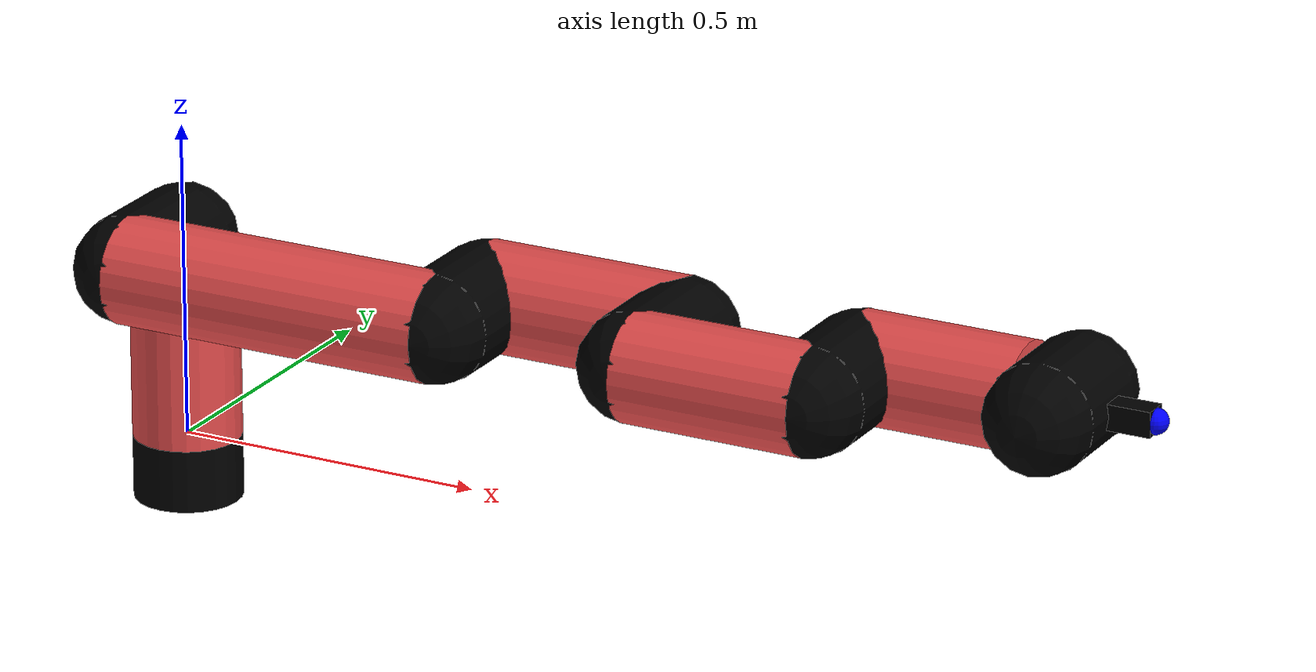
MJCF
<mujoco model="manipulator">
		<compiler angle="degree" coordinate="local" inertiafromgeom="auto" meshdir="meshes/"/>
		<option gravity="0 0 0" integrator="RK4" iterations="30" timestep="0.01"/>

		<default>
		<joint armature="1" limited="true" stiffness="10" damping="15" frictionloss="5.0"/>
		<geom conaffinity="1" condim="3" contype="1" friction=".5 .1 .1" margin="0.002"/>
		<motor ctrllimited="true"/>
		<position ctrllimited="true"/>
		</default>

		<asset>
		<texture builtin="gradient" height="100" rgb1="1.0 1.0 1.0" rgb2="1.0 1.0 1.0" type="skybox" width="100"/>
		<texture builtin="flat" height="32" name="arm_tex" rgb1="0.9 0.3 0.3" type="2d" width="32"/>
		<texture builtin="flat" height="32" name="gripper_tex" rgb1="0.0 0.0 0.0" type="cube" width="32"/>

		<material name="arm_mat" shininess="0.1" specular="0.1" texture="arm_tex"/>
		<material name="gripper_mat" shininess="1" specular="1" texture="gripper_tex"/>
		</asset>

		<worldbody>
		<light cutoff="45" diffuse=".8 .8 .8" dir="0 0.16 -1" directional="false" name="light" pos="0 -2.0 8.0" specular="0.3 0.3 0.3"/>

		<body name="base_link" pos="0 0 -0.1">
		<geom fromto="0 0 0 0 0 0.1" material="arm_mat" name="base_link" rgba="0.0 0.0 0.0 1" size="0.085" type="cylinder"/>
		</body>

		<body name="l1" pos="0 0 0">
<geom fromto="0 0 0 0 0 0.32" material="arm_mat" name="l1" rgba="0.9 0.3 0.3 1" size="0.085" type="cylinder"/>
<geom fromto="0 0 0.32 0 -0.16 0.32" material="arm_mat" name="l1_ex" rgba="0.0 0.0 0.0 1" size="0.085" type="capsule"/>
<joint axis="0 0 1" name="j1" pos="0 0 0" range="-90 90" damping="31.63" frictionloss="9.44"/>

<body name="l2" pos="0 -0.16 0.32">
<geom fromto="0 0 0 0.53 0 0" material="arm_mat" name="l2" rgba="0.9 0.3 0.3 1" size="0.085" type="cylinder"/>
<geom fromto="0.53 0 0 0.53 0.16 0" material="arm_mat" name="l2_ex" rgba="0.0 0.0 0.0 1" size="0.085" type="capsule"/>
<joint axis="0.0 1.0 0.0" name="j2" pos="0 0 0" range="-90 60" damping="28.13" frictionloss="11.34"/>

<body name="l3" pos="0.53 0.16 0">
<geom fromto="0 0 0 0.33 0 0" material="arm_mat" name="l3" rgba="0.9 0.3 0.3 1" size="0.085" type="cylinder"/>
<geom fromto="0.33 0 0 0.33 -0.16 0" material="arm_mat" name="l3_ex" rgba="0.0 0.0 0.0 1" size="0.085" type="capsule"/>
<joint axis="0.0 1.0 0.0" name="j3" pos="0 0 0" range="-30 60" damping="36.59" frictionloss="9.01"/>

<body name="l4" pos="0.33 -0.16 0">
<geom fromto="0 0 0 0.29 0 0" material="arm_mat" name="l4" rgba="0.9 0.3 0.3 1" size="0.085" type="cylinder"/>
<geom fromto="0.29 0 0 0.29 0.16 0" material="arm_mat" name="l4_ex" rgba="0.0 0.0 0.0 1" size="0.085" type="capsule"/>
<joint axis="0.0 1.0 0.0" name="j4" pos="0 0 0" range="-30 60" damping="35.37" frictionloss="10.59"/>

<body name="l5" pos="0.29 0.16 0">
<geom fromto="0 0 0 0.27 0 0" material="arm_mat" name="l5" rgba="0.9 0.3 0.3 1" size="0.085" type="cylinder"/>
<joint axis="0.0 1.0 0.0" name="j5" pos="0 0 0" range="-30 60" damping="35.36" frictionloss="9.92"/>

<body name="gripper" pos="0.27 0 0">
<geom fromto="0.05 -0.07 0 0.05 0.07 0" material="gripper_mat" name="gripper" rgba="0.0 0.0 0.0 1" size="0.085" type="capsule"/><joint axis="1 0 0" name="j6" pos="0 0 0" range="-90 90" damping="15" frictionloss="5.0"/><body name="finger" pos="0.1 0 0">
<geom fromto="0 0.0 0 0.1 0.0 0" material="gripper_mat" name="finger" rgba="0.0 0.0 0.0 1" size="0.020 0.06 0.06" type="box"/>
</body>
<site name="current" pos="0.2 0. 0.0" rgba="0. 0. 1.0 1" size="0.02" type="sphere"/>
</body>
</body>
</body>
</body>
</body>
</body>
</worldbody>
<actuator>
<motor ctrllimited="true" ctrlrange="-1.0 1.0" joint="j1" gear="70.3"/>
<motor ctrllimited="true" ctrlrange="-1.0 1.0" joint="j2" gear="94.56"/>
<motor ctrllimited="true" ctrlrange="-1.0 1.0" joint="j3" gear="94.05"/>
<motor ctrllimited="true" ctrlrange="-1.0 1.0" joint="j4" gear="71.46"/>
<motor ctrllimited="true" ctrlrange="-1.0 1.0" joint="j5" gear="66.11"/>
<motor ctrllimited="true" ctrlrange="-1.0 1.0" joint="j6" gear="80"/>
</actuator>
</mujoco>
